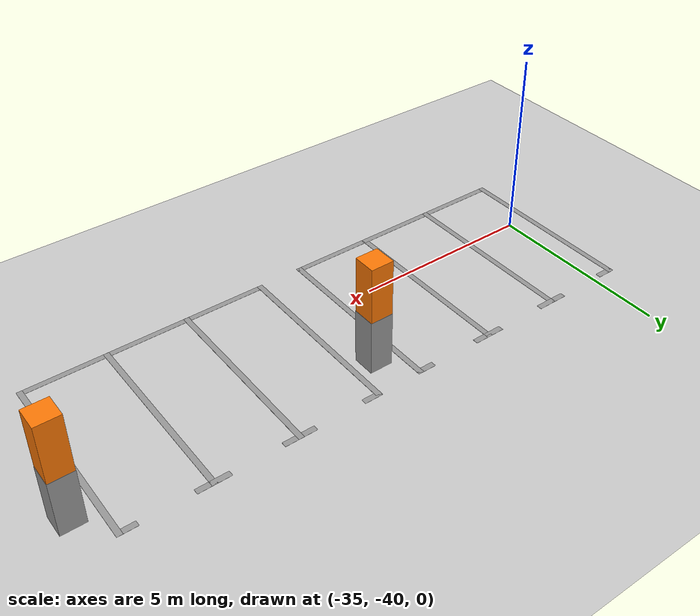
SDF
<sdf version="1.7">
 <world name="default">
  <model name="ground_plane">
   <static>1</static>
   <link name="link">
    <collision name="collision">
     <geometry><plane><normal>0 0 1</normal><size>100 100</size></plane></geometry>
     <surface><friction><ode><mu>100</mu><mu2>50</mu2></ode></friction></surface>
    </collision>
    <visual name="visual">
     <cast_shadows>0</cast_shadows>
     <geometry><plane><normal>0 0 1</normal><size>100 100</size></plane></geometry>
     <material>
      <script><uri>file://media/materials/scripts/gazebo.material</uri><name>Gazebo/Grey</name></script>
     </material>
    </visual>
   </link>
  </model>
  <model name="carport1_4_clone_3_clone_clone_0">
   <pose>-31.9359 -41.1153 0 0 -0 3.14141</pose>
   <link name="Wall_105">
    <collision name="Wall_105_Collision">
     <geometry><box><size>0.61 0.6 1.5</size></box></geometry>
     <pose>0 0 0.75 0 -0 0</pose>
    </collision>
    <visual name="Wall_105_Visual">
     <pose>0 0 0.75 0 -0 0</pose>
     <geometry><box><size>0.61 0.6 1.5</size></box></geometry>
     <material>
      <script><uri>file://media/materials/scripts/gazebo.material</uri><name>Gazebo/Grey</name></script>
      <ambient>1 1 1 1</ambient>
     </material>
     <meta><layer>0</layer></meta>
    </visual>
    <pose>-3.47407 -3.2865 0 0 -0 0</pose>
   </link>
   <link name="Wall_116">
    <collision name="Wall_116_Collision">
     <geometry><box><size>5.1 0.15 0.005</size></box></geometry>
     <pose>0 0 0.0025 0 -0 0</pose>
    </collision>
    <visual name="Wall_116_Visual">
     <pose>0 0 0.0025 0 -0 0</pose>
     <geometry><box><size>5.1 0.15 0.005</size></box></geometry>
     <material>
      <script><uri>file://media/materials/scripts/gazebo.material</uri><name>Gazebo/Grey</name></script>
      <ambient>1 1 1 1</ambient>
     </material>
     <meta><layer>0</layer></meta>
    </visual>
    <pose>-2.82307 -1.7385 0 0 -0 1.5708</pose>
   </link>
   <link name="Wall_124">
    <collision name="Wall_124_Collision">
     <geometry><box><size>5.1 0.15 0.005</size></box></geometry>
     <pose>0 0 0.0025 0 -0 0</pose>
    </collision>
    <visual name="Wall_124_Visual">
     <pose>0 0 0.0025 0 -0 0</pose>
     <geometry><box><size>5.1 0.15 0.005</size></box></geometry>
     <material>
      <script><uri>file://media/materials/scripts/gazebo.material</uri><name>Gazebo/Grey</name></script>
      <ambient>1 1 1 1</ambient>
     </material>
     <meta><layer>0</layer></meta>
    </visual>
    <pose>3.70393 -1.7305 0 0 -0 1.5708</pose>
   </link>
   <link name="Wall_146">
    <collision name="Wall_146_Collision">
     <geometry><box><size>6.67711 0.15 0.005</size></box></geometry>
     <pose>0 0 0.0025 0 -0 0</pose>
    </collision>
    <visual name="Wall_146_Visual">
     <pose>0 0 0.0025 0 -0 0</pose>
     <geometry><box><size>6.67711 0.15 0.005</size></box></geometry>
     <material>
      <script><uri>file://media/materials/scripts/gazebo.material</uri><name>Gazebo/Grey</name></script>
      <ambient>1 1 1 1</ambient>
     </material>
     <meta><layer>0</layer></meta>
    </visual>
    <pose>0.440428 0.7405 0 0 -0 0.001226</pose>
   </link>
   <link name="Wall_168">
    <collision name="Wall_168_Collision">
     <geometry><box><size>5.1 0.15 0.005</size></box></geometry>
     <pose>0 0 0.0025 0 -0 0</pose>
    </collision>
    <visual name="Wall_168_Visual">
     <pose>0 0 0.0025 0 -0 0</pose>
     <geometry><box><size>5.1 0.15 0.005</size></box></geometry>
     <material>
      <script><uri>file://media/materials/scripts/gazebo.material</uri><name>Gazebo/Grey</name></script>
      <ambient>1 1 1 1</ambient>
     </material>
     <meta><layer>0</layer></meta>
    </visual>
    <pose>-0.64827 -1.73839 0 0 -0 1.57088</pose>
   </link>
   <link name="Wall_173">
    <collision name="Wall_173_Collision">
     <geometry><box><size>5.1 0.15 0.005</size></box></geometry>
     <pose>0 0 0.0025 0 -0 0</pose>
    </collision>
    <visual name="Wall_173_Visual">
     <pose>0 0 0.0025 0 -0 0</pose>
     <geometry><box><size>5.1 0.15 0.005</size></box></geometry>
     <material>
      <script><uri>file://media/materials/scripts/gazebo.material</uri><name>Gazebo/Grey</name></script>
      <ambient>1 1 1 1</ambient>
     </material>
     <meta><layer>0</layer></meta>
    </visual>
    <pose>1.52673 -1.73839 0 0 -0 1.57088</pose>
   </link>
   <link name="Wall_177">
    <collision name="Wall_177_Collision">
     <geometry><box><size>0.6 0.59 3</size></box></geometry>
     <pose>0 0 1.5 0 -0 0</pose>
    </collision>
    <visual name="Wall_177_Visual">
     <pose>0 0 1.5 0 -0 0</pose>
     <geometry><box><size>0.6 0.59 3</size></box></geometry>
     <material>
      <script><uri>file://media/materials/scripts/gazebo.material</uri><name>Gazebo/Grey</name></script>
      <ambient>0.996078 0.47451 0.0196078 1</ambient>
     </material>
     <meta><layer>0</layer></meta>
    </visual>
    <pose>-3.47407 -3.2865 0 0 -0 0</pose>
   </link>
   <link name="Wall_179">
    <collision name="Wall_179_Collision">
     <geometry><box><size>0.5 0.15 0.005</size></box></geometry>
     <pose>0 0 0.0025 0 -0 0</pose>
    </collision>
    <visual name="Wall_179_Visual">
     <pose>0 0 0.0025 0 -0 0</pose>
     <geometry><box><size>0.5 0.15 0.005</size></box></geometry>
     <material>
      <script><uri>file://media/materials/scripts/gazebo.material</uri><name>Gazebo/Grey</name></script>
      <ambient>1 1 1 1</ambient>
     </material>
     <meta><layer>0</layer></meta>
    </visual>
    <pose>-2.64807 -4.2135 0 0 -0 0</pose>
   </link>
   <link name="Wall_181">
    <collision name="Wall_181_Collision">
     <geometry><box><size>0.5 0.15 0.005</size></box></geometry>
     <pose>0 0 0.0025 0 -0 0</pose>
    </collision>
    <visual name="Wall_181_Visual">
     <pose>0 0 0.0025 0 -0 0</pose>
     <geometry><box><size>0.5 0.15 0.005</size></box></geometry>
     <material>
      <script><uri>file://media/materials/scripts/gazebo.material</uri><name>Gazebo/Grey</name></script>
      <ambient>1 1 1 1</ambient>
     </material>
     <meta><layer>0</layer></meta>
    </visual>
    <pose>-0.823072 -4.2135 0 0 -0 3.14159</pose>
   </link>
   <link name="Wall_183">
    <collision name="Wall_183_Collision">
     <geometry><box><size>0.5 0.15 0.005</size></box></geometry>
     <pose>0 0 0.0025 0 -0 0</pose>
    </collision>
    <visual name="Wall_183_Visual">
     <pose>0 0 0.0025 0 -0 0</pose>
     <geometry><box><size>0.5 0.15 0.005</size></box></geometry>
     <material>
      <script><uri>file://media/materials/scripts/gazebo.material</uri><name>Gazebo/Grey</name></script>
      <ambient>1 1 1 1</ambient>
     </material>
     <meta><layer>0</layer></meta>
    </visual>
    <pose>-0.473072 -4.2135 0 0 -0 0</pose>
   </link>
   <link name="Wall_185">
    <collision name="Wall_185_Collision">
     <geometry><box><size>0.5 0.15 0.005</size></box></geometry>
     <pose>0 0 0.0025 0 -0 0</pose>
    </collision>
    <visual name="Wall_185_Visual">
     <pose>0 0 0.0025 0 -0 0</pose>
     <geometry><box><size>0.5 0.15 0.005</size></box></geometry>
     <material>
      <script><uri>file://media/materials/scripts/gazebo.material</uri><name>Gazebo/Grey</name></script>
      <ambient>1 1 1 1</ambient>
     </material>
     <meta><layer>0</layer></meta>
    </visual>
    <pose>1.35193 -4.2135 0 0 -0 3.14159</pose>
   </link>
   <link name="Wall_187">
    <collision name="Wall_187_Collision">
     <geometry><box><size>0.5 0.15 0.005</size></box></geometry>
     <pose>0 0 0.0025 0 -0 0</pose>
    </collision>
    <visual name="Wall_187_Visual">
     <pose>0 0 0.0025 0 -0 0</pose>
     <geometry><box><size>0.5 0.15 0.005</size></box></geometry>
     <material>
      <script><uri>file://media/materials/scripts/gazebo.material</uri><name>Gazebo/Grey</name></script>
      <ambient>1 1 1 1</ambient>
     </material>
     <meta><layer>0</layer></meta>
    </visual>
    <pose>1.70193 -4.2135 0 0 -0 0</pose>
   </link>
   <link name="Wall_189">
    <collision name="Wall_189_Collision">
     <geometry><box><size>0.5 0.15 0.005</size></box></geometry>
     <pose>0 0 0.0025 0 -0 0</pose>
    </collision>
    <visual name="Wall_189_Visual">
     <pose>0 0 0.0025 0 -0 0</pose>
     <geometry><box><size>0.5 0.15 0.005</size></box></geometry>
     <material>
      <script><uri>file://media/materials/scripts/gazebo.material</uri><name>Gazebo/Grey</name></script>
      <ambient>1 1 1 1</ambient>
     </material>
     <meta><layer>0</layer></meta>
    </visual>
    <pose>3.52893 -4.2055 0 0 -0 3.14159</pose>
   </link>
   <static>1</static>
  </model>
  <model name="carport1_4_clone_3_clone_clone_1">
   <pose>-24.168 -41.0891 0 0 -0 3.14141</pose>
   <link name="Wall_105">
    <collision name="Wall_105_Collision">
     <geometry><box><size>0.61 0.6 1.5</size></box></geometry>
     <pose>0 0 0.75 0 -0 0</pose>
    </collision>
    <visual name="Wall_105_Visual">
     <pose>0 0 0.75 0 -0 0</pose>
     <geometry><box><size>0.61 0.6 1.5</size></box></geometry>
     <material>
      <script><uri>file://media/materials/scripts/gazebo.material</uri><name>Gazebo/Grey</name></script>
      <ambient>1 1 1 1</ambient>
     </material>
     <meta><layer>0</layer></meta>
    </visual>
    <pose>-3.47407 -3.2865 0 0 -0 0</pose>
   </link>
   <link name="Wall_116">
    <collision name="Wall_116_Collision">
     <geometry><box><size>5.1 0.15 0.005</size></box></geometry>
     <pose>0 0 0.0025 0 -0 0</pose>
    </collision>
    <visual name="Wall_116_Visual">
     <pose>0 0 0.0025 0 -0 0</pose>
     <geometry><box><size>5.1 0.15 0.005</size></box></geometry>
     <material>
      <script><uri>file://media/materials/scripts/gazebo.material</uri><name>Gazebo/Grey</name></script>
      <ambient>1 1 1 1</ambient>
     </material>
     <meta><layer>0</layer></meta>
    </visual>
    <pose>-2.82307 -1.7385 0 0 -0 1.5708</pose>
   </link>
   <link name="Wall_124">
    <collision name="Wall_124_Collision">
     <geometry><box><size>5.1 0.15 0.005</size></box></geometry>
     <pose>0 0 0.0025 0 -0 0</pose>
    </collision>
    <visual name="Wall_124_Visual">
     <pose>0 0 0.0025 0 -0 0</pose>
     <geometry><box><size>5.1 0.15 0.005</size></box></geometry>
     <material>
      <script><uri>file://media/materials/scripts/gazebo.material</uri><name>Gazebo/Grey</name></script>
      <ambient>1 1 1 1</ambient>
     </material>
     <meta><layer>0</layer></meta>
    </visual>
    <pose>3.70393 -1.7305 0 0 -0 1.5708</pose>
   </link>
   <link name="Wall_146">
    <collision name="Wall_146_Collision">
     <geometry><box><size>6.67711 0.15 0.005</size></box></geometry>
     <pose>0 0 0.0025 0 -0 0</pose>
    </collision>
    <visual name="Wall_146_Visual">
     <pose>0 0 0.0025 0 -0 0</pose>
     <geometry><box><size>6.67711 0.15 0.005</size></box></geometry>
     <material>
      <script><uri>file://media/materials/scripts/gazebo.material</uri><name>Gazebo/Grey</name></script>
      <ambient>1 1 1 1</ambient>
     </material>
     <meta><layer>0</layer></meta>
    </visual>
    <pose>0.440428 0.7405 0 0 -0 0.001226</pose>
   </link>
   <link name="Wall_168">
    <collision name="Wall_168_Collision">
     <geometry><box><size>5.1 0.15 0.005</size></box></geometry>
     <pose>0 0 0.0025 0 -0 0</pose>
    </collision>
    <visual name="Wall_168_Visual">
     <pose>0 0 0.0025 0 -0 0</pose>
     <geometry><box><size>5.1 0.15 0.005</size></box></geometry>
     <material>
      <script><uri>file://media/materials/scripts/gazebo.material</uri><name>Gazebo/Grey</name></script>
      <ambient>1 1 1 1</ambient>
     </material>
     <meta><layer>0</layer></meta>
    </visual>
    <pose>-0.64827 -1.73839 0 0 -0 1.57088</pose>
   </link>
   <link name="Wall_173">
    <collision name="Wall_173_Collision">
     <geometry><box><size>5.1 0.15 0.005</size></box></geometry>
     <pose>0 0 0.0025 0 -0 0</pose>
    </collision>
    <visual name="Wall_173_Visual">
     <pose>0 0 0.0025 0 -0 0</pose>
     <geometry><box><size>5.1 0.15 0.005</size></box></geometry>
     <material>
      <script><uri>file://media/materials/scripts/gazebo.material</uri><name>Gazebo/Grey</name></script>
      <ambient>1 1 1 1</ambient>
     </material>
     <meta><layer>0</layer></meta>
    </visual>
    <pose>1.52673 -1.73839 0 0 -0 1.57088</pose>
   </link>
   <link name="Wall_177">
    <collision name="Wall_177_Collision">
     <geometry><box><size>0.6 0.59 3</size></box></geometry>
     <pose>0 0 1.5 0 -0 0</pose>
    </collision>
    <visual name="Wall_177_Visual">
     <pose>0 0 1.5 0 -0 0</pose>
     <geometry><box><size>0.6 0.59 3</size></box></geometry>
     <material>
      <script><uri>file://media/materials/scripts/gazebo.material</uri><name>Gazebo/Grey</name></script>
      <ambient>0.996078 0.47451 0.0196078 1</ambient>
     </material>
     <meta><layer>0</layer></meta>
    </visual>
    <pose>-3.47407 -3.2865 0 0 -0 0</pose>
   </link>
   <link name="Wall_179">
    <collision name="Wall_179_Collision">
     <geometry><box><size>0.5 0.15 0.005</size></box></geometry>
     <pose>0 0 0.0025 0 -0 0</pose>
    </collision>
    <visual name="Wall_179_Visual">
     <pose>0 0 0.0025 0 -0 0</pose>
     <geometry><box><size>0.5 0.15 0.005</size></box></geometry>
     <material>
      <script><uri>file://media/materials/scripts/gazebo.material</uri><name>Gazebo/Grey</name></script>
      <ambient>1 1 1 1</ambient>
     </material>
     <meta><layer>0</layer></meta>
    </visual>
    <pose>-2.64807 -4.2135 0 0 -0 0</pose>
   </link>
   <link name="Wall_181">
    <collision name="Wall_181_Collision">
     <geometry><box><size>0.5 0.15 0.005</size></box></geometry>
     <pose>0 0 0.0025 0 -0 0</pose>
    </collision>
    <visual name="Wall_181_Visual">
     <pose>0 0 0.0025 0 -0 0</pose>
     <geometry><box><size>0.5 0.15 0.005</size></box></geometry>
     <material>
      <script><uri>file://media/materials/scripts/gazebo.material</uri><name>Gazebo/Grey</name></script>
      <ambient>1 1 1 1</ambient>
     </material>
     <meta><layer>0</layer></meta>
    </visual>
    <pose>-0.823072 -4.2135 0 0 -0 3.14159</pose>
   </link>
   <link name="Wall_183">
    <collision name="Wall_183_Collision">
     <geometry><box><size>0.5 0.15 0.005</size></box></geometry>
     <pose>0 0 0.0025 0 -0 0</pose>
    </collision>
    <visual name="Wall_183_Visual">
     <pose>0 0 0.0025 0 -0 0</pose>
     <geometry><box><size>0.5 0.15 0.005</size></box></geometry>
     <material>
      <script><uri>file://media/materials/scripts/gazebo.material</uri><name>Gazebo/Grey</name></script>
      <ambient>1 1 1 1</ambient>
     </material>
     <meta><layer>0</layer></meta>
    </visual>
    <pose>-0.473072 -4.2135 0 0 -0 0</pose>
   </link>
   <link name="Wall_185">
    <collision name="Wall_185_Collision">
     <geometry><box><size>0.5 0.15 0.005</size></box></geometry>
     <pose>0 0 0.0025 0 -0 0</pose>
    </collision>
    <visual name="Wall_185_Visual">
     <pose>0 0 0.0025 0 -0 0</pose>
     <geometry><box><size>0.5 0.15 0.005</size></box></geometry>
     <material>
      <script><uri>file://media/materials/scripts/gazebo.material</uri><name>Gazebo/Grey</name></script>
      <ambient>1 1 1 1</ambient>
     </material>
     <meta><layer>0</layer></meta>
    </visual>
    <pose>1.35193 -4.2135 0 0 -0 3.14159</pose>
   </link>
   <link name="Wall_187">
    <collision name="Wall_187_Collision">
     <geometry><box><size>0.5 0.15 0.005</size></box></geometry>
     <pose>0 0 0.0025 0 -0 0</pose>
    </collision>
    <visual name="Wall_187_Visual">
     <pose>0 0 0.0025 0 -0 0</pose>
     <geometry><box><size>0.5 0.15 0.005</size></box></geometry>
     <material>
      <script><uri>file://media/materials/scripts/gazebo.material</uri><name>Gazebo/Grey</name></script>
      <ambient>1 1 1 1</ambient>
     </material>
     <meta><layer>0</layer></meta>
    </visual>
    <pose>1.70193 -4.2135 0 0 -0 0</pose>
   </link>
   <link name="Wall_189">
    <collision name="Wall_189_Collision">
     <geometry><box><size>0.5 0.15 0.005</size></box></geometry>
     <pose>0 0 0.0025 0 -0 0</pose>
    </collision>
    <visual name="Wall_189_Visual">
     <pose>0 0 0.0025 0 -0 0</pose>
     <geometry><box><size>0.5 0.15 0.005</size></box></geometry>
     <material>
      <script><uri>file://media/materials/scripts/gazebo.material</uri><name>Gazebo/Grey</name></script>
      <ambient>1 1 1 1</ambient>
     </material>
     <meta><layer>0</layer></meta>
    </visual>
    <pose>3.52893 -4.2055 0 0 -0 3.14159</pose>
   </link>
   <static>1</static>
  </model>
 </world>
</sdf>
